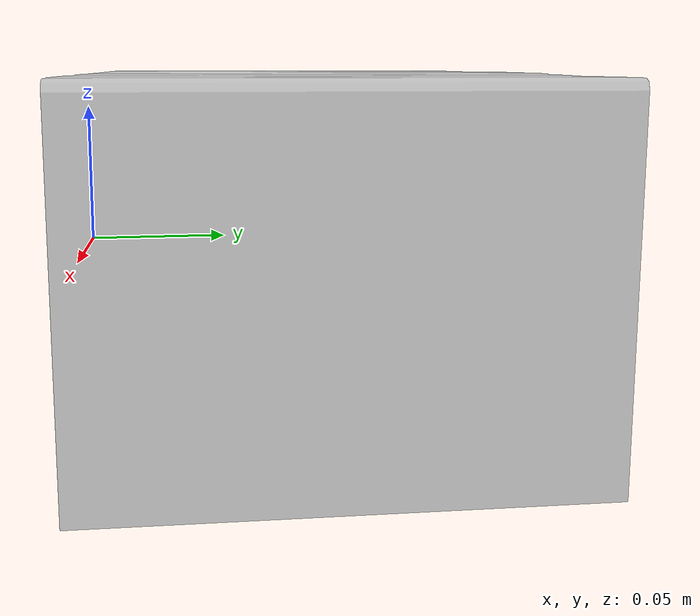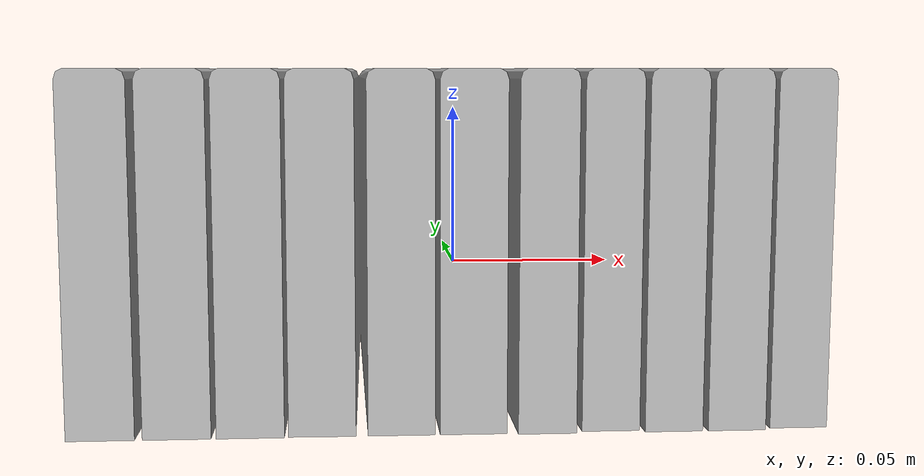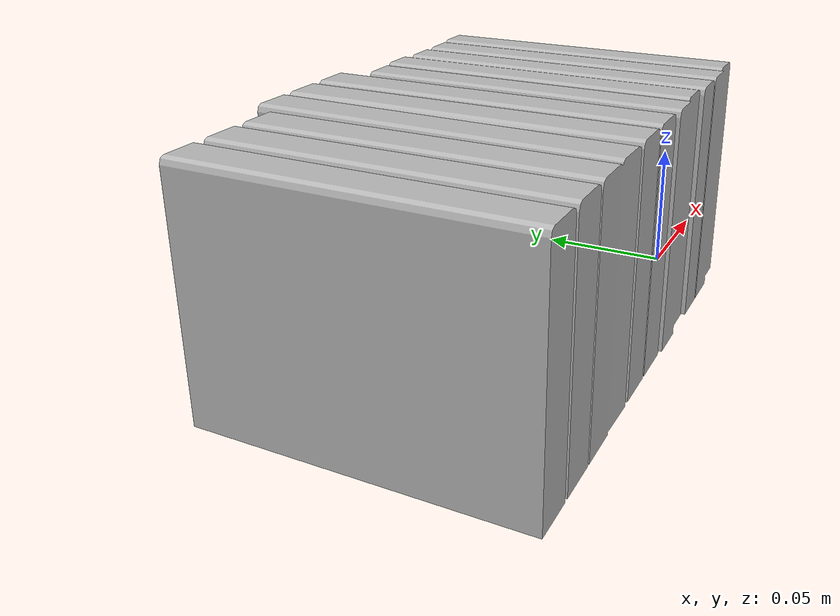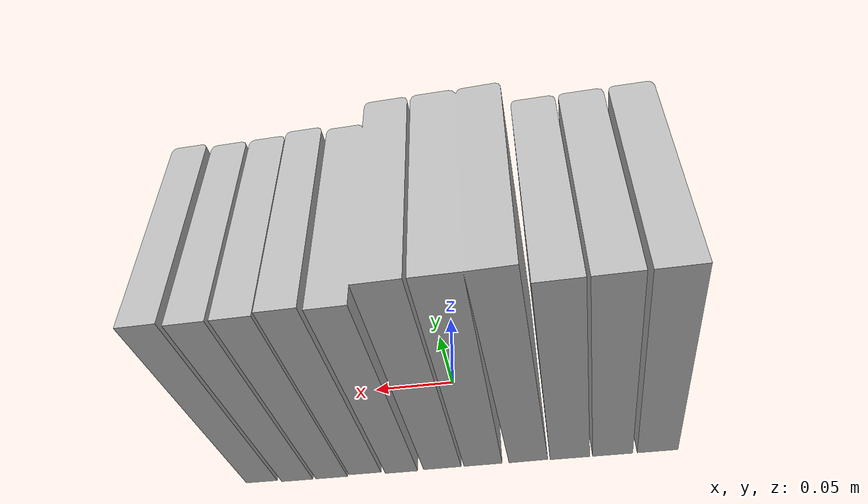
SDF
<?xml version="1.0" ?>
<sdf version="1.4">
  <model name="shelf2_book2_v1">
    <link name="body">
      <pose>0 0 0 0 0 0</pose>
      <inertial>
        <pose>   0.003086   0.082616   0.001443 0 0 0</pose>
        <mass>0.5</mass>
        <inertia>
          <ixx>0.01</ixx>
          <ixy>0</ixy>
          <ixz>0</ixz>
          <iyy>0.01</iyy>
          <iyz>0</iyz>
          <izz>0.01</izz>
        </inertia>
      </inertial>
      <collision name="collision">
        <geometry>
          <mesh>
            <uri>model://bookshelf/shelf2_items/book2_v1/book2_v1.dae</uri>
          </mesh>
        </geometry>
      </collision>
      <visual name="visual">
        <geometry>
          <mesh>
            <uri>model://bookshelf/shelf2_items/book2_v1/book2_v1.dae</uri>
          </mesh>
        </geometry>
      </visual>
    </link>
  </model>
</sdf>
